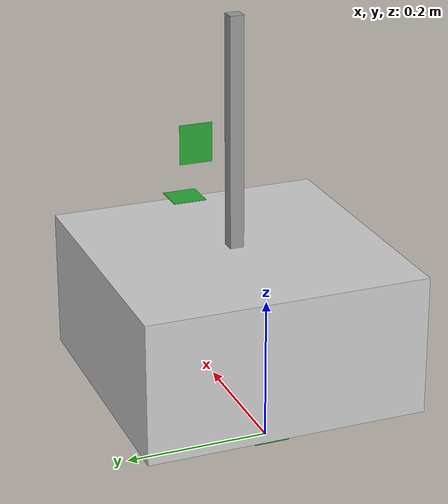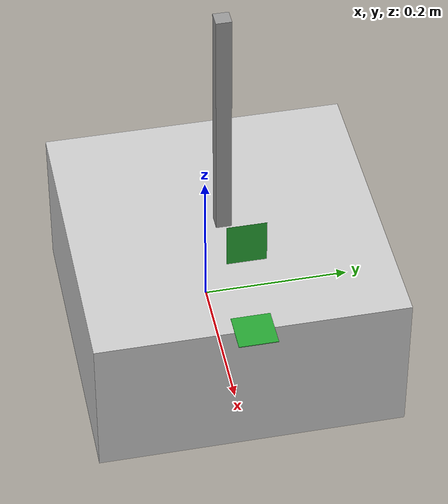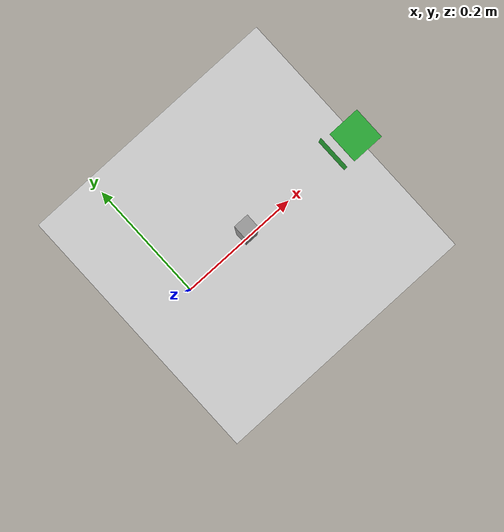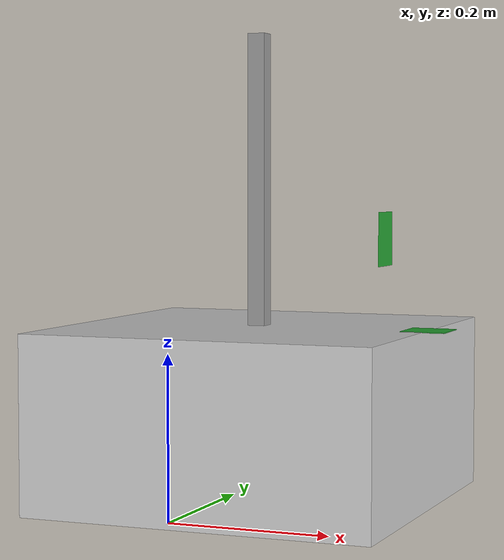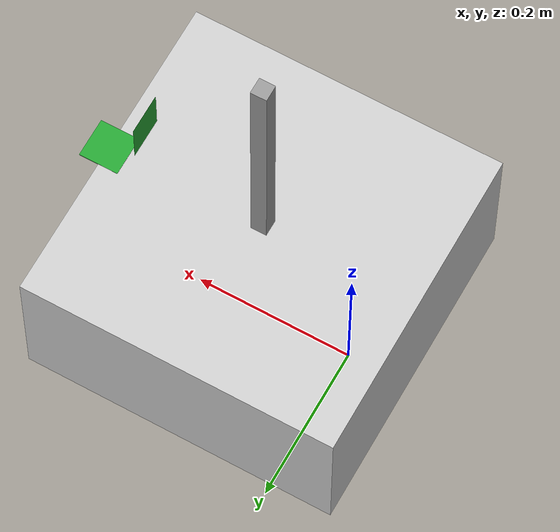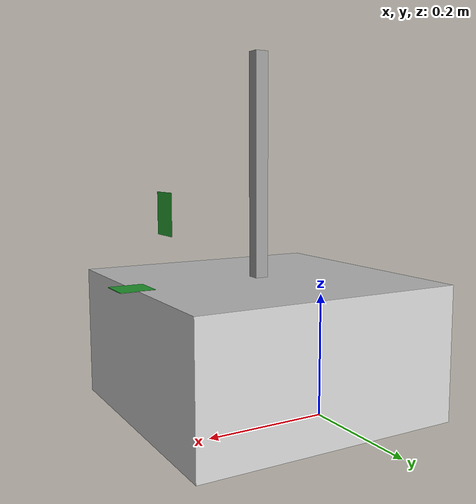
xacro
<?xml version="1.0"?>

<robot name="box_robot" xmlns:xacro="http://ros.org/wiki/xacro">

   <!-- Define a number of dimensions using properties -->
   <xacro:property name="torso_offset_x" value="0.0" />
   <xacro:property name="torso_offset_y" value="0.0" />
   <xacro:property name="torso_offset_z" value="0.23" /> <!--base_height/2+torso_height/2 -->

   <!-- Include all component files -->
   <xacro:include filename="$(find dashgo_description)/urdf/dashgobase/materials.urdf.xacro" />
   <xacro:include filename="$(find dashgo_description)/urdf/dashgobase/base.urdf.xacro" />
   <xacro:include filename="$(find dashgo_description)/urdf/dashgobase/torso.urdf.xacro" />
   <!--xacro:include filename="$(find dashgo_description)/urdf/dashgobase/dashgo.gazebo.xacro"/-->
   <!-- Add the base and wheels -->
   <base name="base" color="Black"/>

   <!-- Attach the torso -->

   <torso name="torso" parent="base" color="Grey">
      <origin xyz="${torso_offset_x} ${torso_offset_y} ${torso_offset_z}" rpy="0 0 0" />
   </torso>

 <joint name="laser" type="fixed">
    <origin xyz="0.15 0.00 0.20" rpy="0 0 0" />
    <parent link="base_link" />
    <child link="base_laser_link" />
  </joint>

  <link name="base_laser_link">
    <visual>
      <geometry>
        <box size="0.00 0.05 0.06" />
      </geometry>
      <material name="Green" />
    </visual>
    <inertial>
      <mass value="0.000001" />
      <origin xyz="0 0 0" />
      <inertia ixx="0.0001" ixy="0.0" ixz="0.0"
        iyy="0.0001" iyz="0.0"
        izz="0.0001" />
    </inertial>
  </link>

  <link name="front_flag">
      <visual>
        <origin xyz="0 0 0" rpy="0 0 0" />
        <geometry>
          <box size="0.05 0.05 0.001" />
        </geometry>
        <material name="TransparentGreen" />
      </visual>
  </link>

  <joint name="front_point_flag" type="fixed">
    <origin xyz="0.2 0 ${base_length/2}" rpy="0 0 0" />
    <parent link="base_link"/>
    <child link="front_flag" />
  </joint>

</robot>

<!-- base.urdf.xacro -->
<robot name="base" xmlns:xacro="http://ros.org/wiki/xacro">

  <!-- Define a number of dimensions using properties -->
  <xacro:property name="base_x" value="0.40" />
  <xacro:property name="base_y" value="0.40" />
  <xacro:property name="base_length" value="0.20" />
  <xacro:property name="wheel_length" value="0.046" />
  <xacro:property name="wheel_radius" value="0.062" />
  <xacro:property name="wheel_offset_x" value="-0.08" />
  <xacro:property name="wheel_offset_y" value="0.176" />
  <xacro:property name="wheel_offset_z" value="-0.038" />

  <xacro:property name="PI" value="3.1415926" />

  <!-- define a wheel -->
  <xacro:macro name="wheel" params="suffix parent reflect color">
    <joint name="${parent}_${suffix}_wheel_joint" type="continuous">
      <axis xyz="0 0 1" />
      <limit effort="100" velocity="100"/>
      <safety_controller k_velocity="10" />
      <origin xyz="${wheel_offset_x} ${reflect*wheel_offset_y} ${wheel_offset_z}" rpy="${reflect*PI/2} 0 0" />
      <parent link="${parent}_link"/>
      <child link="${parent}_${suffix}_wheel_link"/>
    </joint>
    <link name="${parent}_${suffix}_wheel_link">
      <visual>
        <origin xyz="0 0 0" rpy="0 0 0" />
        <geometry>
          <cylinder radius="${wheel_radius}" length="${wheel_length}"/>
        </geometry>
        <material name="${color}" />
      </visual>
    </link>
  </xacro:macro>

  <!-- The base xacro macro -->
  <xacro:macro name="base" params="name color">
    <link name="${name}_link">

        <visual>
            <origin xyz="0 0 0" rpy="0 0 0"/>
            <geometry>
                <box size="${base_x} ${base_y} ${base_length}"/>
            </geometry>
            <material name="iRobot/LightGrey"/>
        </visual>
        <collision>
            <origin xyz="0 0 0" rpy="0 0 0"/>
            <geometry>
                 <box size="${base_x} ${base_y} ${base_length}"/>
            </geometry>
        </collision>
    </link>
  </xacro:macro>

  <link name="base_footprint">
      <visual>
        <origin xyz="0 0 0" rpy="0 0 0" />
        <geometry>
          <box size="0.05 0.05 0.001" />
        </geometry>
        <material name="TransparentGreen" />
      </visual>
  </link>

  <joint name="base_joint" type="fixed">
    <origin xyz="0.115 0 ${base_length/2 - wheel_offset_z}" rpy="0 0 0" />
    <parent link="base_footprint"/>
    <child link="base_link" />
  </joint>

   <!-- Add the drive wheels -->
   <wheel parent="base" suffix="l" reflect="1" color="Orange"/>
   <wheel parent="base" suffix="r" reflect="-1" color="Orange"/>

</robot>

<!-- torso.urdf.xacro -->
<robot name="torso" xmlns:xacro="http://ros.org/wiki/xacro">

  <!-- Define a number of dimensions using properties -->
  <xacro:property name="torso_size_x" value="0.02" />
  <xacro:property name="torso_size_y" value="0.02" />
  <xacro:property name="torso_size_z" value="0.40" />

  <!-- Define the torso -->
  <xacro:macro name="torso" params="parent name color *origin">
    <joint name="${parent}_${name}_joint" type="fixed">
      <xacro:insert_block name="origin" />
      <parent link="${parent}_link"/>
      <child link="${name}_link"/>
    </joint>
    <link name="${name}_link">
      <visual>
        <origin xyz="0 0 0" rpy="0 0 0" />
        <geometry>
          <box size="${torso_size_x} ${torso_size_y} ${torso_size_z}" />
        </geometry>
        <material name="${color}" />
      </visual>
      <collision>
        <origin xyz="0 0 0" rpy="0 0 0" />
        <geometry>
          <box size="${torso_size_x} ${torso_size_y} ${torso_size_z}" />
        </geometry>
      </collision>
    </link>
  </xacro:macro>

</robot>
